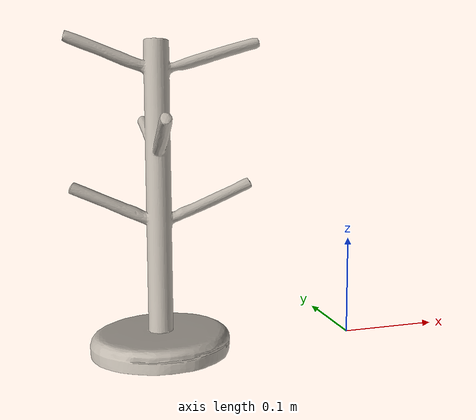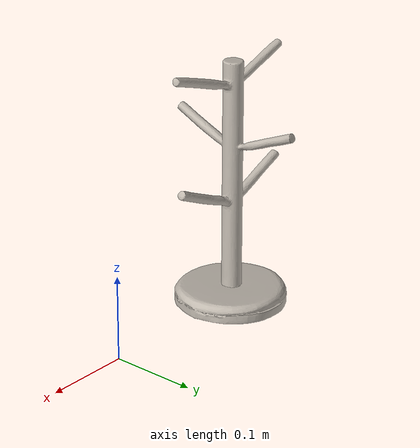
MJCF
<mujoco model="mug_rack">

  <asset>
    <texture name="mug_rack" file="mug_rack.png" type="2d" width="1024" height="1024"/>
    <material name="mug_rack" texture="mug_rack" specular="0.1" shininess="0.1"/>
    <mesh name="mug_rack" file="mug_rack.obj" scale="0.15 0.15 0.15"/>
  </asset>

  <default>
    <default class="mug_rack-collision">
      <geom type="box" group="3"/>
      <default class="mug_rack">
        <geom size="0.0026 0.00704 0.033"/>
      </default>
    </default>
  </default>

  <worldbody>
    <body name="mug_rack">
      <freejoint/>
      <geom type="mesh" mesh="mug_rack" material="mug_rack" pos="-0.17 0 0.15" euler="90 0 0" group="1" contype="3" conaffinity="3"/>
    </body>
  </worldbody>
</mujoco>
